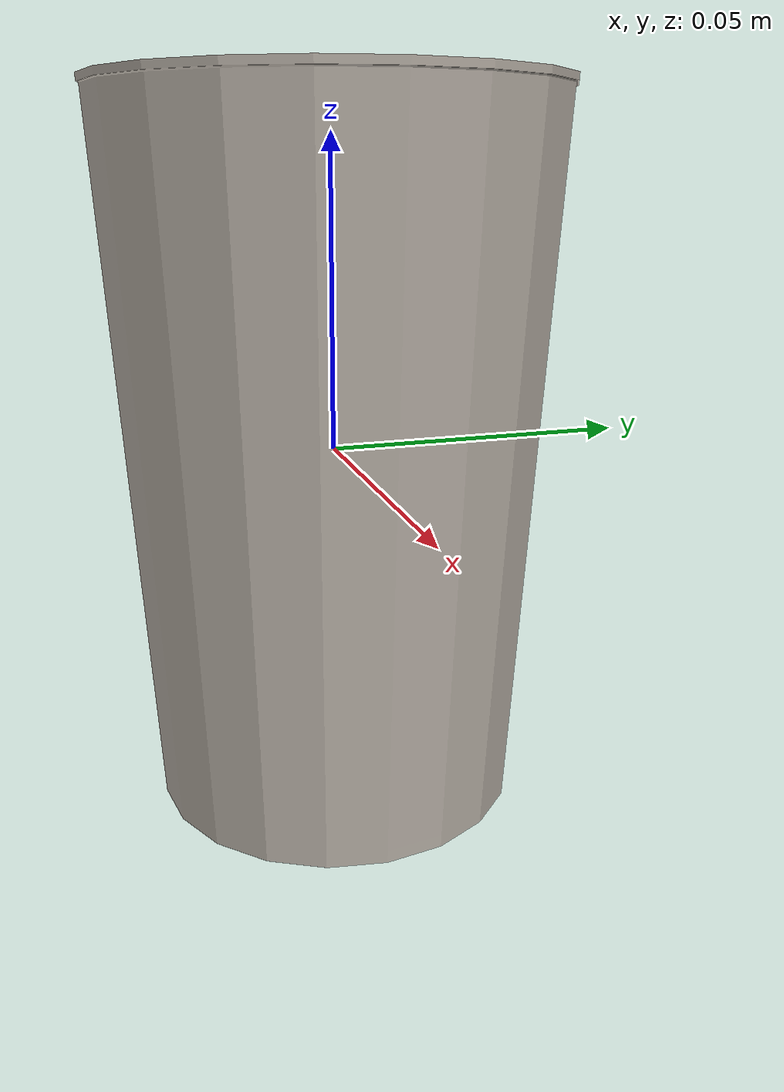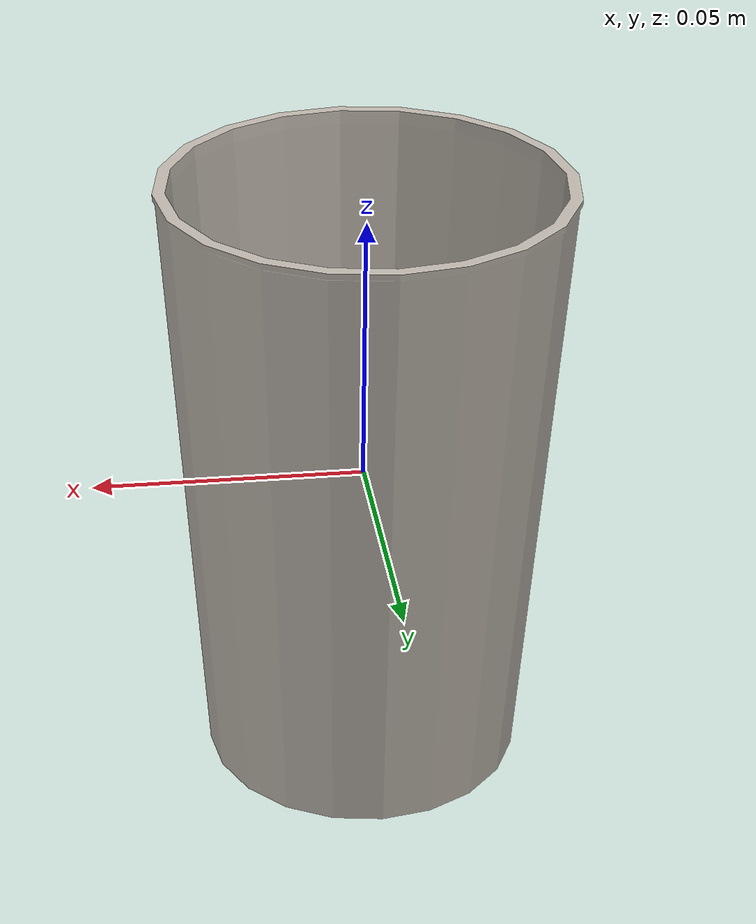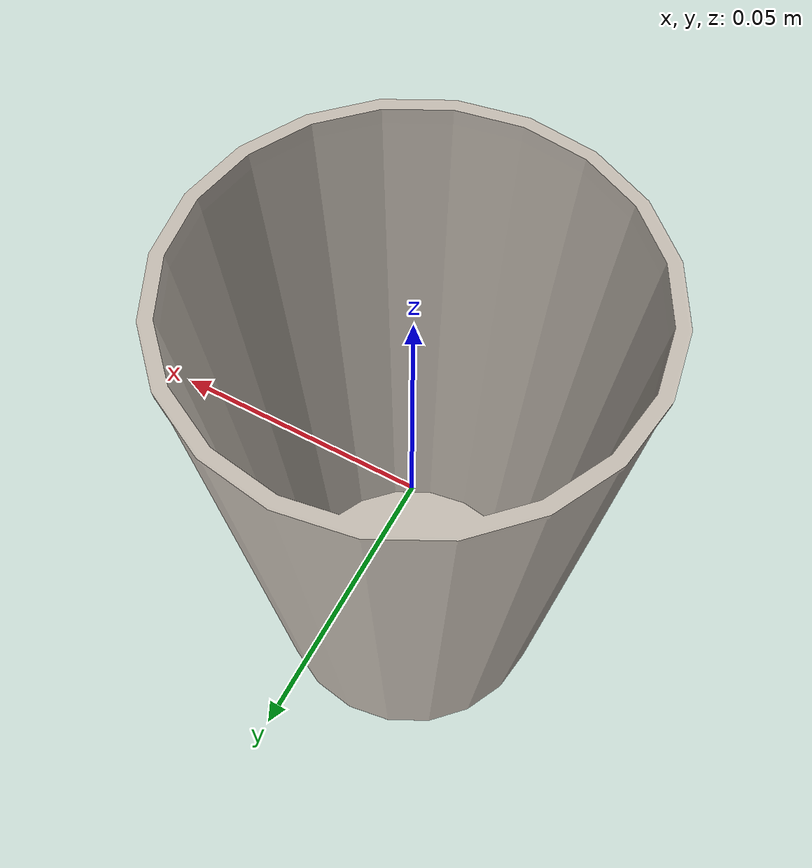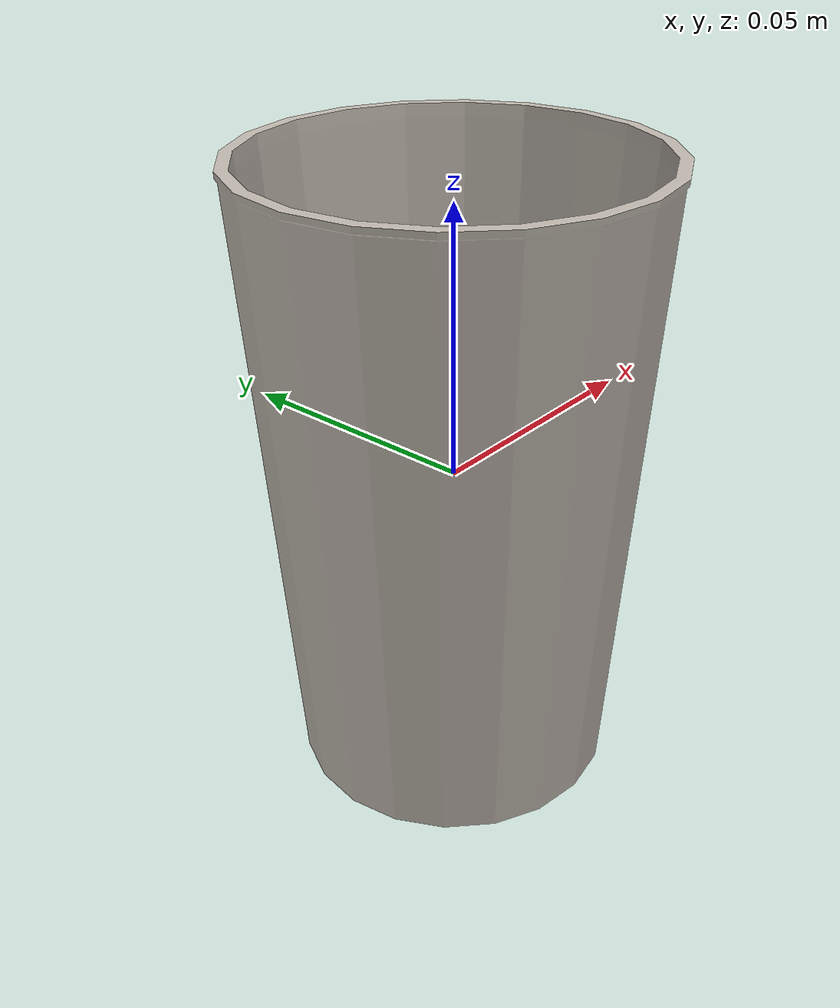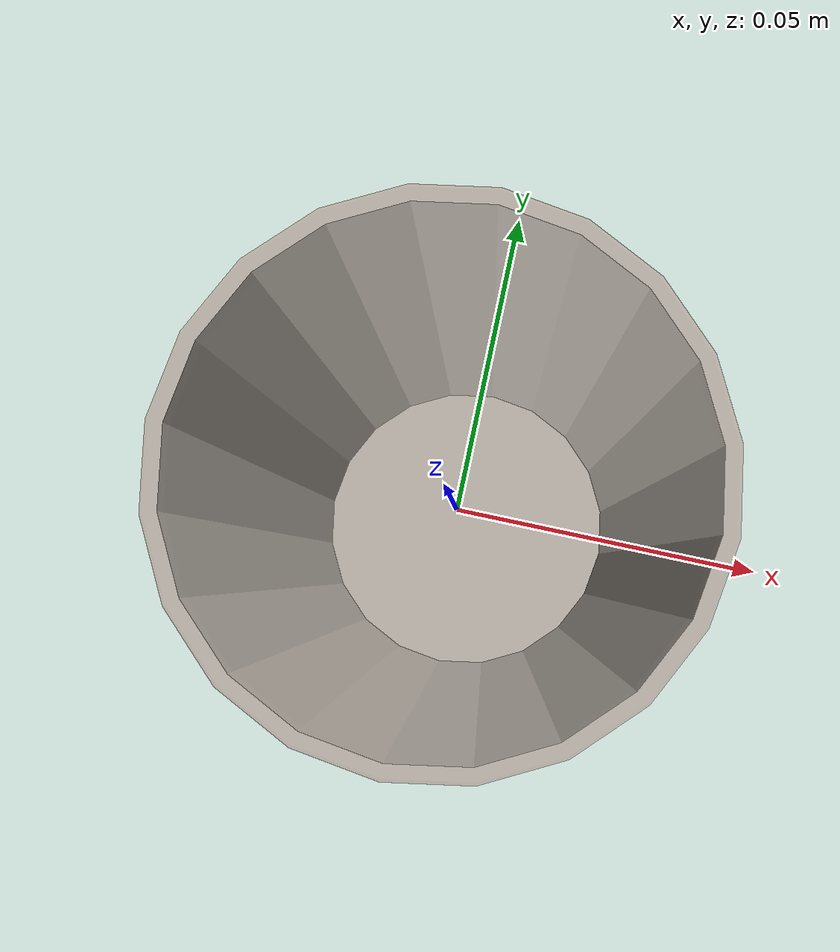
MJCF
<mujoco model="cup_2">
  <asset>
    <mesh file="visual/model_normalized_0.obj" name="model_normalized_0_vis" scale="0.11499999999999996 0.11499999999999996 0.11499999999999996" refquat="1.0 0.0 0.0 0.0"/>
    <mesh file="collision/model_normalized_collision_22.obj" name="model_normalized_collision_22._coll" scale="0.11499999999999996 0.11499999999999996 0.11499999999999996" refquat="1.0 0.0 0.0 0.0"/>
    <mesh file="collision/model_normalized_collision_23.obj" name="model_normalized_collision_23._coll" scale="0.11499999999999996 0.11499999999999996 0.11499999999999996" refquat="1.0 0.0 0.0 0.0"/>
    <mesh file="collision/model_normalized_collision_21.obj" name="model_normalized_collision_21._coll" scale="0.11499999999999996 0.11499999999999996 0.11499999999999996" refquat="1.0 0.0 0.0 0.0"/>
    <mesh file="collision/model_normalized_collision_20.obj" name="model_normalized_collision_20._coll" scale="0.11499999999999996 0.11499999999999996 0.11499999999999996" refquat="1.0 0.0 0.0 0.0"/>
    <mesh file="collision/model_normalized_collision_24.obj" name="model_normalized_collision_24._coll" scale="0.11499999999999996 0.11499999999999996 0.11499999999999996" refquat="1.0 0.0 0.0 0.0"/>
    <mesh file="collision/model_normalized_collision_30.obj" name="model_normalized_collision_30._coll" scale="0.11499999999999996 0.11499999999999996 0.11499999999999996" refquat="1.0 0.0 0.0 0.0"/>
    <mesh file="collision/model_normalized_collision_18.obj" name="model_normalized_collision_18._coll" scale="0.11499999999999996 0.11499999999999996 0.11499999999999996" refquat="1.0 0.0 0.0 0.0"/>
    <mesh file="collision/model_normalized_collision_19.obj" name="model_normalized_collision_19._coll" scale="0.11499999999999996 0.11499999999999996 0.11499999999999996" refquat="1.0 0.0 0.0 0.0"/>
    <mesh file="collision/model_normalized_collision_31.obj" name="model_normalized_collision_31._coll" scale="0.11499999999999996 0.11499999999999996 0.11499999999999996" refquat="1.0 0.0 0.0 0.0"/>
    <mesh file="collision/model_normalized_collision_25.obj" name="model_normalized_collision_25._coll" scale="0.11499999999999996 0.11499999999999996 0.11499999999999996" refquat="1.0 0.0 0.0 0.0"/>
    <mesh file="collision/model_normalized_collision_27.obj" name="model_normalized_collision_27._coll" scale="0.11499999999999996 0.11499999999999996 0.11499999999999996" refquat="1.0 0.0 0.0 0.0"/>
    <mesh file="collision/model_normalized_collision_26.obj" name="model_normalized_collision_26._coll" scale="0.11499999999999996 0.11499999999999996 0.11499999999999996" refquat="1.0 0.0 0.0 0.0"/>
    <mesh file="collision/model_normalized_collision_9.obj" name="model_normalized_collision_9._coll" scale="0.11499999999999996 0.11499999999999996 0.11499999999999996" refquat="1.0 0.0 0.0 0.0"/>
    <mesh file="collision/model_normalized_collision_8.obj" name="model_normalized_collision_8._coll" scale="0.11499999999999996 0.11499999999999996 0.11499999999999996" refquat="1.0 0.0 0.0 0.0"/>
    <mesh file="collision/model_normalized_collision_6.obj" name="model_normalized_collision_6._coll" scale="0.11499999999999996 0.11499999999999996 0.11499999999999996" refquat="1.0 0.0 0.0 0.0"/>
    <mesh file="collision/model_normalized_collision_7.obj" name="model_normalized_collision_7._coll" scale="0.11499999999999996 0.11499999999999996 0.11499999999999996" refquat="1.0 0.0 0.0 0.0"/>
    <mesh file="collision/model_normalized_collision_5.obj" name="model_normalized_collision_5._coll" scale="0.11499999999999996 0.11499999999999996 0.11499999999999996" refquat="1.0 0.0 0.0 0.0"/>
    <mesh file="collision/model_normalized_collision_4.obj" name="model_normalized_collision_4._coll" scale="0.11499999999999996 0.11499999999999996 0.11499999999999996" refquat="1.0 0.0 0.0 0.0"/>
    <mesh file="collision/model_normalized_collision_0.obj" name="model_normalized_collision_0._coll" scale="0.11499999999999996 0.11499999999999996 0.11499999999999996" refquat="1.0 0.0 0.0 0.0"/>
    <mesh file="collision/model_normalized_collision_1.obj" name="model_normalized_collision_1._coll" scale="0.11499999999999996 0.11499999999999996 0.11499999999999996" refquat="1.0 0.0 0.0 0.0"/>
    <mesh file="collision/model_normalized_collision_3.obj" name="model_normalized_collision_3._coll" scale="0.11499999999999996 0.11499999999999996 0.11499999999999996" refquat="1.0 0.0 0.0 0.0"/>
    <mesh file="collision/model_normalized_collision_2.obj" name="model_normalized_collision_2._coll" scale="0.11499999999999996 0.11499999999999996 0.11499999999999996" refquat="1.0 0.0 0.0 0.0"/>
    <mesh file="collision/model_normalized_collision_17.obj" name="model_normalized_collision_17._coll" scale="0.11499999999999996 0.11499999999999996 0.11499999999999996" refquat="1.0 0.0 0.0 0.0"/>
    <mesh file="collision/model_normalized_collision_16.obj" name="model_normalized_collision_16._coll" scale="0.11499999999999996 0.11499999999999996 0.11499999999999996" refquat="1.0 0.0 0.0 0.0"/>
    <mesh file="collision/model_normalized_collision_28.obj" name="model_normalized_collision_28._coll" scale="0.11499999999999996 0.11499999999999996 0.11499999999999996" refquat="1.0 0.0 0.0 0.0"/>
    <mesh file="collision/model_normalized_collision_14.obj" name="model_normalized_collision_14._coll" scale="0.11499999999999996 0.11499999999999996 0.11499999999999996" refquat="1.0 0.0 0.0 0.0"/>
    <mesh file="collision/model_normalized_collision_15.obj" name="model_normalized_collision_15._coll" scale="0.11499999999999996 0.11499999999999996 0.11499999999999996" refquat="1.0 0.0 0.0 0.0"/>
    <mesh file="collision/model_normalized_collision_29.obj" name="model_normalized_collision_29._coll" scale="0.11499999999999996 0.11499999999999996 0.11499999999999996" refquat="1.0 0.0 0.0 0.0"/>
    <mesh file="collision/model_normalized_collision_11.obj" name="model_normalized_collision_11._coll" scale="0.11499999999999996 0.11499999999999996 0.11499999999999996" refquat="1.0 0.0 0.0 0.0"/>
    <mesh file="collision/model_normalized_collision_10.obj" name="model_normalized_collision_10._coll" scale="0.11499999999999996 0.11499999999999996 0.11499999999999996" refquat="1.0 0.0 0.0 0.0"/>
    <mesh file="collision/model_normalized_collision_12.obj" name="model_normalized_collision_12._coll" scale="0.11499999999999996 0.11499999999999996 0.11499999999999996" refquat="1.0 0.0 0.0 0.0"/>
    <mesh file="collision/model_normalized_collision_13.obj" name="model_normalized_collision_13._coll" scale="0.11499999999999996 0.11499999999999996 0.11499999999999996" refquat="1.0 0.0 0.0 0.0"/>
    <texture type="2d" name="image0" file="visual/image0.png"/>
    <material name="lambert3SG" texture="image0" specular="0.5" shininess="0.0"/>
  </asset>
  <worldbody>
    <body>
      <body name="object">
        <geom solimp="0.998 0.998 0.001" solref="0.001 1" density="100" friction="0.95 0.3 0.1" type="mesh" mesh="model_normalized_0_vis" conaffinity="0" contype="0" group="1" material="lambert3SG"/>
        <geom solimp="0.998 0.998 0.001" solref="0.001 1" density="100" friction="0.95 0.3 0.1" type="mesh" mesh="model_normalized_collision_22._coll" group="0" rgba="0.8 0.8 0.8 0.0"/>
        <geom solimp="0.998 0.998 0.001" solref="0.001 1" density="100" friction="0.95 0.3 0.1" type="mesh" mesh="model_normalized_collision_23._coll" group="0" rgba="0.8 0.8 0.8 0.0"/>
        <geom solimp="0.998 0.998 0.001" solref="0.001 1" density="100" friction="0.95 0.3 0.1" type="mesh" mesh="model_normalized_collision_21._coll" group="0" rgba="0.8 0.8 0.8 0.0"/>
        <geom solimp="0.998 0.998 0.001" solref="0.001 1" density="100" friction="0.95 0.3 0.1" type="mesh" mesh="model_normalized_collision_20._coll" group="0" rgba="0.8 0.8 0.8 0.0"/>
        <geom solimp="0.998 0.998 0.001" solref="0.001 1" density="100" friction="0.95 0.3 0.1" type="mesh" mesh="model_normalized_collision_24._coll" group="0" rgba="0.8 0.8 0.8 0.0"/>
        <geom solimp="0.998 0.998 0.001" solref="0.001 1" density="100" friction="0.95 0.3 0.1" type="mesh" mesh="model_normalized_collision_30._coll" group="0" rgba="0.8 0.8 0.8 0.0"/>
        <geom solimp="0.998 0.998 0.001" solref="0.001 1" density="100" friction="0.95 0.3 0.1" type="mesh" mesh="model_normalized_collision_18._coll" group="0" rgba="0.8 0.8 0.8 0.0"/>
        <geom solimp="0.998 0.998 0.001" solref="0.001 1" density="100" friction="0.95 0.3 0.1" type="mesh" mesh="model_normalized_collision_19._coll" group="0" rgba="0.8 0.8 0.8 0.0"/>
        <geom solimp="0.998 0.998 0.001" solref="0.001 1" density="100" friction="0.95 0.3 0.1" type="mesh" mesh="model_normalized_collision_31._coll" group="0" rgba="0.8 0.8 0.8 0.0"/>
        <geom solimp="0.998 0.998 0.001" solref="0.001 1" density="100" friction="0.95 0.3 0.1" type="mesh" mesh="model_normalized_collision_25._coll" group="0" rgba="0.8 0.8 0.8 0.0"/>
        <geom solimp="0.998 0.998 0.001" solref="0.001 1" density="100" friction="0.95 0.3 0.1" type="mesh" mesh="model_normalized_collision_27._coll" group="0" rgba="0.8 0.8 0.8 0.0"/>
        <geom solimp="0.998 0.998 0.001" solref="0.001 1" density="100" friction="0.95 0.3 0.1" type="mesh" mesh="model_normalized_collision_26._coll" group="0" rgba="0.8 0.8 0.8 0.0"/>
        <geom solimp="0.998 0.998 0.001" solref="0.001 1" density="100" friction="0.95 0.3 0.1" type="mesh" mesh="model_normalized_collision_9._coll" group="0" rgba="0.8 0.8 0.8 0.0"/>
        <geom solimp="0.998 0.998 0.001" solref="0.001 1" density="100" friction="0.95 0.3 0.1" type="mesh" mesh="model_normalized_collision_8._coll" group="0" rgba="0.8 0.8 0.8 0.0"/>
        <geom solimp="0.998 0.998 0.001" solref="0.001 1" density="100" friction="0.95 0.3 0.1" type="mesh" mesh="model_normalized_collision_6._coll" group="0" rgba="0.8 0.8 0.8 0.0"/>
        <geom solimp="0.998 0.998 0.001" solref="0.001 1" density="100" friction="0.95 0.3 0.1" type="mesh" mesh="model_normalized_collision_7._coll" group="0" rgba="0.8 0.8 0.8 0.0"/>
        <geom solimp="0.998 0.998 0.001" solref="0.001 1" density="100" friction="0.95 0.3 0.1" type="mesh" mesh="model_normalized_collision_5._coll" group="0" rgba="0.8 0.8 0.8 0.0"/>
        <geom solimp="0.998 0.998 0.001" solref="0.001 1" density="100" friction="0.95 0.3 0.1" type="mesh" mesh="model_normalized_collision_4._coll" group="0" rgba="0.8 0.8 0.8 0.0"/>
        <geom solimp="0.998 0.998 0.001" solref="0.001 1" density="100" friction="0.95 0.3 0.1" type="mesh" mesh="model_normalized_collision_0._coll" group="0" rgba="0.8 0.8 0.8 0.0"/>
        <geom solimp="0.998 0.998 0.001" solref="0.001 1" density="100" friction="0.95 0.3 0.1" type="mesh" mesh="model_normalized_collision_1._coll" group="0" rgba="0.8 0.8 0.8 0.0"/>
        <geom solimp="0.998 0.998 0.001" solref="0.001 1" density="100" friction="0.95 0.3 0.1" type="mesh" mesh="model_normalized_collision_3._coll" group="0" rgba="0.8 0.8 0.8 0.0"/>
        <geom solimp="0.998 0.998 0.001" solref="0.001 1" density="100" friction="0.95 0.3 0.1" type="mesh" mesh="model_normalized_collision_2._coll" group="0" rgba="0.8 0.8 0.8 0.0"/>
        <geom solimp="0.998 0.998 0.001" solref="0.001 1" density="100" friction="0.95 0.3 0.1" type="mesh" mesh="model_normalized_collision_17._coll" group="0" rgba="0.8 0.8 0.8 0.0"/>
        <geom solimp="0.998 0.998 0.001" solref="0.001 1" density="100" friction="0.95 0.3 0.1" type="mesh" mesh="model_normalized_collision_16._coll" group="0" rgba="0.8 0.8 0.8 0.0"/>
        <geom solimp="0.998 0.998 0.001" solref="0.001 1" density="100" friction="0.95 0.3 0.1" type="mesh" mesh="model_normalized_collision_28._coll" group="0" rgba="0.8 0.8 0.8 0.0"/>
        <geom solimp="0.998 0.998 0.001" solref="0.001 1" density="100" friction="0.95 0.3 0.1" type="mesh" mesh="model_normalized_collision_14._coll" group="0" rgba="0.8 0.8 0.8 0.0"/>
        <geom solimp="0.998 0.998 0.001" solref="0.001 1" density="100" friction="0.95 0.3 0.1" type="mesh" mesh="model_normalized_collision_15._coll" group="0" rgba="0.8 0.8 0.8 0.0"/>
        <geom solimp="0.998 0.998 0.001" solref="0.001 1" density="100" friction="0.95 0.3 0.1" type="mesh" mesh="model_normalized_collision_29._coll" group="0" rgba="0.8 0.8 0.8 0.0"/>
        <geom solimp="0.998 0.998 0.001" solref="0.001 1" density="100" friction="0.95 0.3 0.1" type="mesh" mesh="model_normalized_collision_11._coll" group="0" rgba="0.8 0.8 0.8 0.0"/>
        <geom solimp="0.998 0.998 0.001" solref="0.001 1" density="100" friction="0.95 0.3 0.1" type="mesh" mesh="model_normalized_collision_10._coll" group="0" rgba="0.8 0.8 0.8 0.0"/>
        <geom solimp="0.998 0.998 0.001" solref="0.001 1" density="100" friction="0.95 0.3 0.1" type="mesh" mesh="model_normalized_collision_12._coll" group="0" rgba="0.8 0.8 0.8 0.0"/>
        <geom solimp="0.998 0.998 0.001" solref="0.001 1" density="100" friction="0.95 0.3 0.1" type="mesh" mesh="model_normalized_collision_13._coll" group="0" rgba="0.8 0.8 0.8 0.0"/>
      </body>
      <site rgba="0 0 0 0" size="0.005" pos="0.00028806177499999814 -0.0002481435500000003 -0.05749999999999998" name="bottom_site"/>
      <site rgba="0 0 0 0" size="0.005" pos="0.00028806177499999814 -0.0002481435500000003 0.05749999884999999" name="top_site"/>
      <site rgba="0 0 0 0" size="0.005" pos="0.03678336639999999 0.03622832004999999 -5.749999996973452e-10" name="horizontal_radius_site"/>
    </body>
  </worldbody>
</mujoco>
